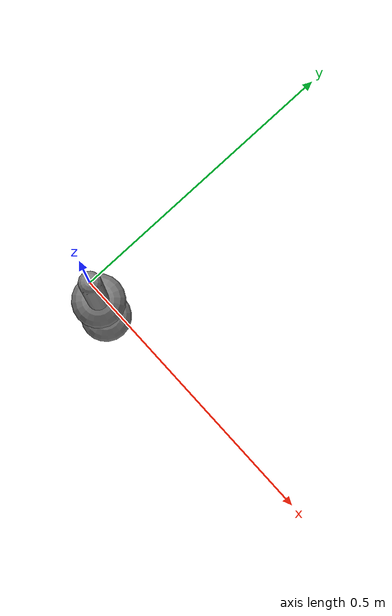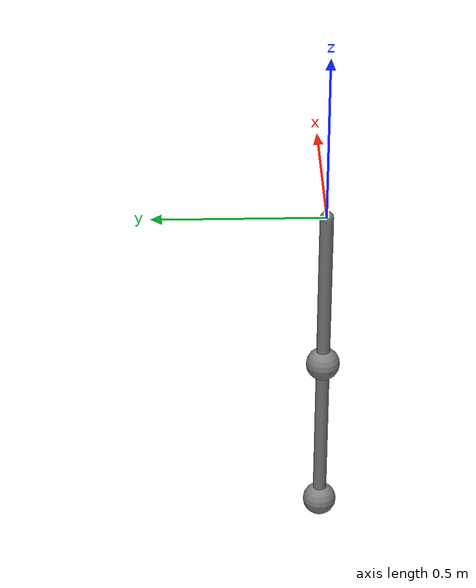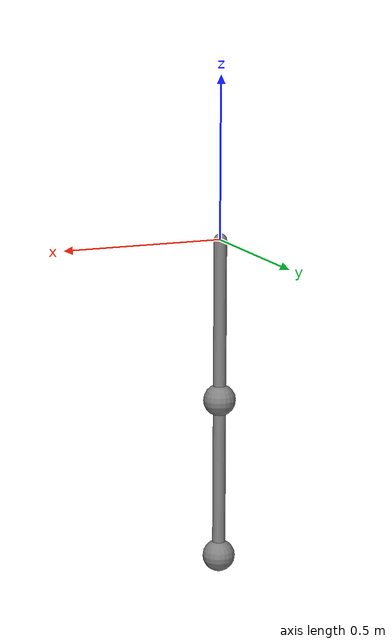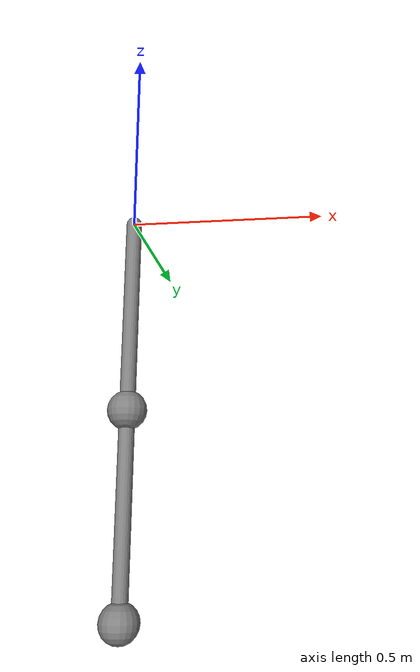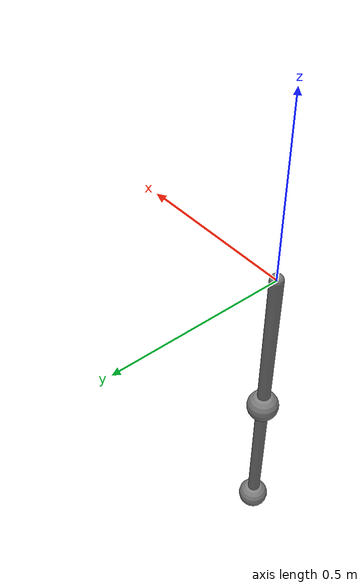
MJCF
<mujoco model="double_pendulum">
  <compiler angle="radian"/>
  <option gravity="0 0 -9.81"/>
  <worldbody>
    <body name="link_1" pos="0 0 0">
      <joint name="hinge_1" type="hinge" axis="0 1 0" damping="0.0" range="-3.14 3.14"/>
      <geom type="capsule" fromto="0 0 0 0 0 -0.5" size="0.02" mass="0.01"/>
      <body name="mass_1" pos="0 0 -0.5">
        <geom type="sphere" size="0.05" mass="0.1"/>
        <body name="link_2" pos="0 0 0">
          <joint name="hinge_2" type="hinge" axis="0 1 0" damping="0.0" range="-3.14 3.14"/>
          <geom type="capsule" fromto="0 0 0 0 0 -0.5" size="0.02" mass="0.01"/>
          <body name="mass_2" pos="0 0 -0.5">
            <geom type="sphere" size="0.05" mass="0.1"/>
          </body>
        </body>
      </body>
    </body>
  </worldbody>
  <actuator>
    <motor name="torque_1" joint="hinge_1" gear="1" ctrlrange="-5 5"/>
    <motor name="torque_2" joint="hinge_2" gear="1" ctrlrange="-5 5"/>
  </actuator>
</mujoco>
